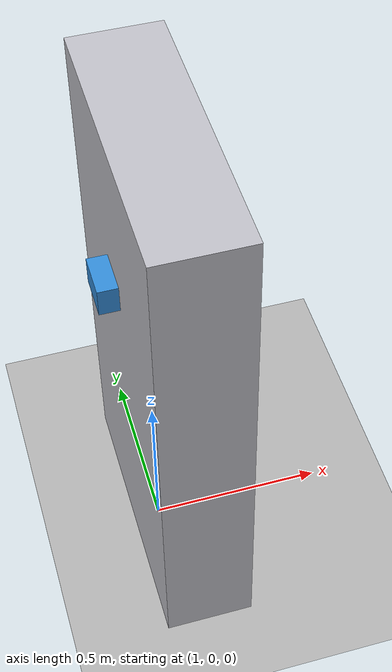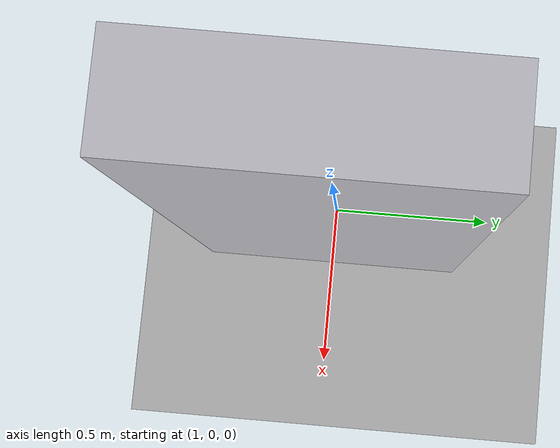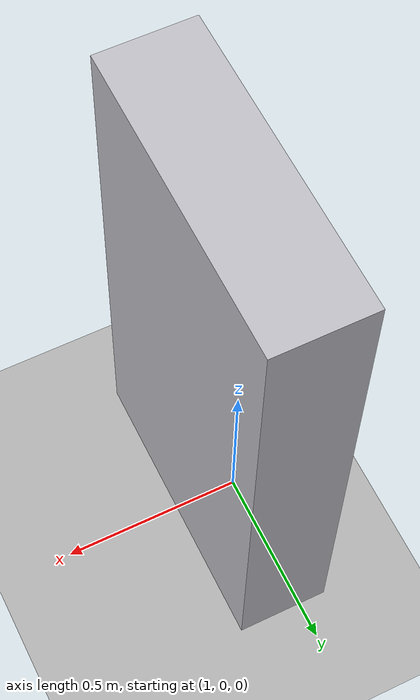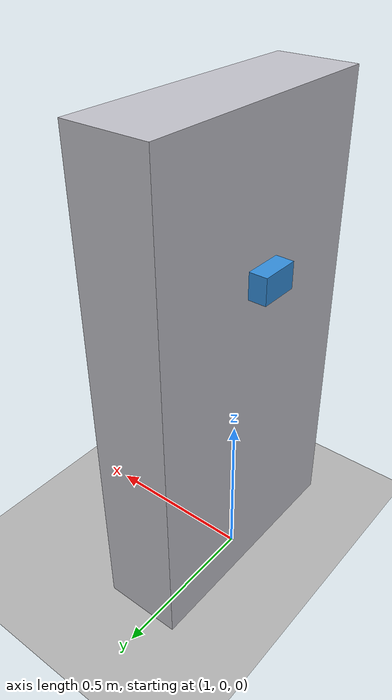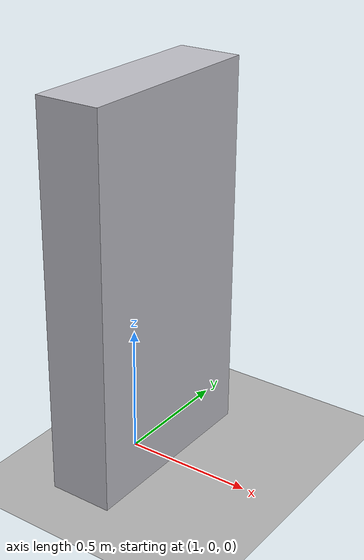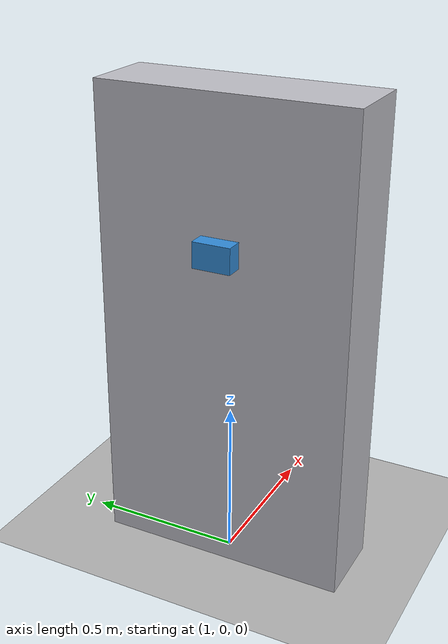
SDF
<?xml version="1.0" ?>
<sdf version="1.9">
  <world name="medipick_test">
    <plugin
      filename="ignition-gazebo-physics-system"
      name="ignition::gazebo::systems::Physics"/>
    <plugin
      filename="ignition-gazebo-user-commands-system"
      name="ignition::gazebo::systems::UserCommands"/>
    <plugin
      filename="ignition-gazebo-scene-broadcaster-system"
      name="ignition::gazebo::systems::SceneBroadcaster"/>
    <plugin
      filename="ignition-gazebo-sensors-system"
      name="ignition::gazebo::systems::Sensors">
      <render_engine>ogre2</render_engine>
    </plugin>
    <plugin
      filename="ignition-gazebo-imu-system"
      name="ignition::gazebo::systems::Imu"/>
    <plugin
      filename="ignition-gazebo-contact-system"
      name="ignition::gazebo::systems::Contact"/>

    <light name="sun" type="directional">
      <cast_shadows>true</cast_shadows>
      <pose>0 0 10 0 0 0</pose>
      <diffuse>0.8 0.8 0.8 1</diffuse>
      <specular>0.2 0.2 0.2 1</specular>
      <direction>-0.5 0.1 -0.9</direction>
    </light>

    <model name="ground_plane">
      <static>true</static>
      <link name="link">
        <collision name="collision">
          <geometry>
            <plane>
              <normal>0 0 1</normal>
              <size>20 20</size>
            </plane>
          </geometry>
        </collision>
        <visual name="visual">
          <geometry>
            <plane>
              <normal>0 0 1</normal>
              <size>20 20</size>
            </plane>
          </geometry>
          <material>
            <ambient>0.7 0.7 0.7 1</ambient>
            <diffuse>0.7 0.7 0.7 1</diffuse>
          </material>
        </visual>
      </link>
    </model>

    <model name="shelf_obstacle">
      <static>true</static>
      <pose>1.05 0.0 0.75 0 0 0</pose>
      <link name="body">
        <collision name="collision">
          <geometry>
            <box>
              <size>0.25 0.80 1.50</size>
            </box>
          </geometry>
        </collision>
        <visual name="visual">
          <geometry>
            <box>
              <size>0.25 0.80 1.50</size>
            </box>
          </geometry>
          <material>
            <ambient>0.75 0.75 0.78 1</ambient>
            <diffuse>0.75 0.75 0.78 1</diffuse>
          </material>
        </visual>
      </link>
    </model>

    <model name="medicine_box">
      <static>true</static>
      <pose>0.92 0.00 1.05 0 0 0</pose>
      <link name="body">
        <collision name="collision">
          <geometry>
            <box>
              <size>0.10 0.12 0.08</size>
            </box>
          </geometry>
        </collision>
        <visual name="visual">
          <geometry>
            <box>
              <size>0.10 0.12 0.08</size>
            </box>
          </geometry>
          <material>
            <ambient>0.20 0.55 0.85 1</ambient>
            <diffuse>0.20 0.55 0.85 1</diffuse>
          </material>
        </visual>
      </link>
    </model>
  </world>
</sdf>
